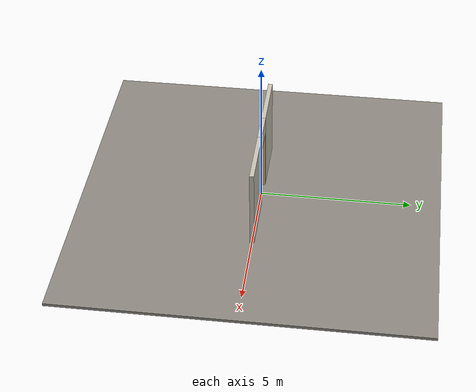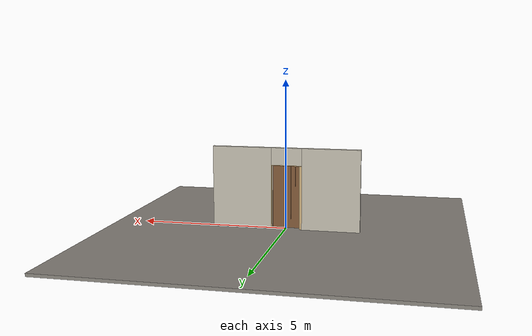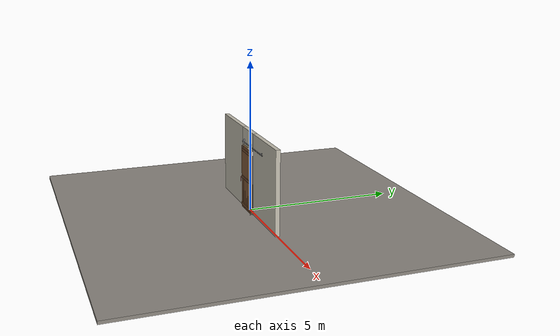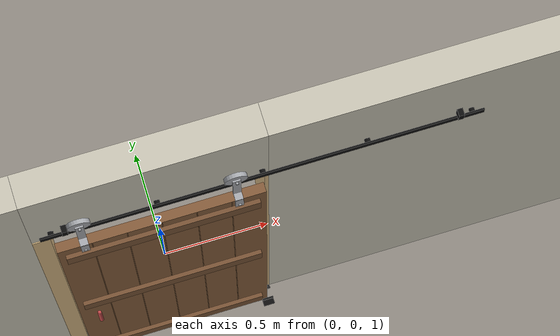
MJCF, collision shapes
<?xml version="1.0" ?>
<mujoco model="db0007_sliding_single_full">
  <compiler angle="radian" meshdir="../../hardware" texturedir="../../textures" autolimits="true" inertiafromgeom="false"/>
  <option timestep="0.002" integrator="implicitfast" cone="elliptic" impratio="10" noslip_iterations="3">
    <flag multiccd="enable"/>
  </option>
  <size memory="16M"/>
  <default>
    <geom condim="4" solref="0.005 1" solimp="0.95 0.99 0.001"/>
    <joint solreflimit="0.005 1" solimplimit="0.95 0.99 0.001"/>
    <tendon solreflimit="0.005 1"/>
    <equality solref="0.002 1"/>
  </default>
  <visual>
    <headlight ambient="0.4 0.4 0.4" diffuse="0.7 0.7 0.7" specular="0.2 0.2 0.2"/>
    <quality shadowsize="4096"/>
    <map znear="0.01" zfar="60"/>
  </visual>
  <asset>
    <mesh name="pull_1e5d69a91a" file="pull_1e5d69a91a.obj"/>
    <material name="mat_floor" rgba="0.55 0.53 0.5 1" specular="0.2" shininess="0.15" reflectance="0"/>
    <material name="mat_wall" rgba="0.78 0.76 0.7 1" specular="0.2" shininess="0.1" reflectance="0"/>
    <material name="mat_frame" rgba="0.82 0.7 0.5 1" specular="0.2" shininess="0.45" reflectance="0"/>
    <material name="mat_track" rgba="0.05 0.05 0.05 1" specular="0.38" shininess="0.3" reflectance="0.12"/>
    <material name="mat_leaf" rgba="0.517 0.357 0.225 1" specular="0.2" shininess="0.5" reflectance="0"/>
    <material name="mat_leaf_brace" rgba="0.466 0.321 0.203 1" specular="0.2" shininess="0.2" reflectance="0"/>
    <material name="mat_roller" rgba="0.65 0.66 0.68 1" specular="0.74" shininess="0.5" reflectance="0.36"/>
    <material name="mat_op_stainless" rgba="0.75 0.76 0.77 1" specular="0.8" shininess="0.65" reflectance="0.4"/>
    <material name="mat_hook" rgba="0.75 0.76 0.77 1" specular="0.8" shininess="0.65" reflectance="0.4"/>
    <texture name="skybox" type="skybox" builtin="gradient" rgb1="0.6 0.7 0.85" rgb2="0.9 0.92 0.95" width="256" height="256"/>
  </asset>
  <worldbody>
    <light name="sun" pos="1.5 -2.5 4" dir="-0.3 0.5 -0.8" directional="true" diffuse="0.8 0.8 0.8" specular="0.3 0.3 0.3" castshadow="true"/>
    <light name="fill" pos="-1.5 2.5 3" dir="0.3 -0.5 -0.7" directional="true" diffuse="0.35 0.35 0.4" castshadow="false"/>
    <camera name="robot_view" pos="0 -2.644375 1.817425" xyaxes="1 0 0 0 0.26963 0.962964" fovy="52"/>
    <camera name="far_view" pos="0 2.644375 1.817425" xyaxes="-1 0 0 0 -0.26963 0.962964" fovy="52"/>
    <camera name="iso" pos="2.009725 -2.221275 2.240525" xyaxes="0.741536 0.670913 0 -0.242917 0.268487 0.932151" fovy="46"/>
    <camera name="detail_handle" pos="-0.187 -0.9965 1.28" xyaxes="0.97561 0.219512 0 -0.070934 0.315262 0.94635" fovy="38"/>
    <geom name="floor" type="box" size="6 6 0.05" pos="0 0 -0.05" material="mat_floor" group="0" contype="1" conaffinity="1" friction="0.8 0.005 0.0001" density="2400"/>
    <geom name="wall_left" type="box" size="0.977 0.0725 1.377" pos="-1.523 0 1.377" material="mat_wall" group="0" contype="1" conaffinity="1" friction="0.6 0.005 0.0001" density="800"/>
    <geom name="wall_right" type="box" size="1.007 0.0725 1.377" pos="1.493 0 1.377" material="mat_wall" group="0" contype="1" conaffinity="1" friction="0.6 0.005 0.0001" density="800"/>
    <geom name="wall_header" type="box" size="0.516 0.0725 0.2905" pos="-0.03 0 2.4635" material="mat_wall" group="0" contype="1" conaffinity="1" friction="0.6 0.005 0.0001" density="800"/>
    <geom name="jamb_r" type="box" size="0.0095 0.0725 1.077" pos="0.4765 0 1.077" material="mat_frame" group="0" contype="1" conaffinity="1" friction="0.6 0.005 0.0001" density="300"/>
    <geom name="jamb_head" type="box" size="0.486 0.0725 0.0095" pos="0 0 2.1635" material="mat_frame" group="0" contype="1" conaffinity="1" friction="0.6 0.005 0.0001" density="300"/>
    <geom name="flat_track" type="box" size="0.964 0.004 0.02" pos="0.457 -0.0945 2.274" material="mat_track" group="0" contype="1" conaffinity="1" friction="0.6 0.005 0.0001" density="7850"/>
    <geom name="track_standoff_0" type="cylinder" size="0.012 0.009" pos="-0.457 -0.0815 2.274" quat="0.707107 -0.707107 0 0" material="mat_track" group="1" contype="0" conaffinity="0" density="7850"/>
    <geom name="track_standoff_1" type="cylinder" size="0.012 0.009" pos="0 -0.0815 2.274" quat="0.707107 -0.707107 0 0" material="mat_track" group="1" contype="0" conaffinity="0" density="7850"/>
    <geom name="track_standoff_2" type="cylinder" size="0.012 0.009" pos="0.457 -0.0815 2.274" quat="0.707107 -0.707107 0 0" material="mat_track" group="1" contype="0" conaffinity="0" density="7850"/>
    <geom name="track_standoff_3" type="cylinder" size="0.012 0.009" pos="0.914 -0.0815 2.274" quat="0.707107 -0.707107 0 0" material="mat_track" group="1" contype="0" conaffinity="0" density="7850"/>
    <geom name="track_standoff_4" type="cylinder" size="0.012 0.009" pos="1.371 -0.0815 2.274" quat="0.707107 -0.707107 0 0" material="mat_track" group="1" contype="0" conaffinity="0" density="7850"/>
    <geom name="leaf_track_stop_l" type="box" size="0.012 0.016 0.027" pos="-0.399 -0.0945 2.319" material="mat_track" group="0" contype="1" conaffinity="1" friction="0.6 0.005 0.0001" density="7850"/>
    <geom name="leaf_track_stop_r" type="box" size="0.012 0.016 0.027" pos="1.313 -0.0945 2.319" material="mat_track" group="0" contype="1" conaffinity="1" friction="0.6 0.005 0.0001" density="7850"/>
    <geom name="jamb_latch_0" type="box" size="0.0395 0.0725 1.077" pos="-0.5065 0 1.077" material="mat_frame" group="0" contype="1" conaffinity="1" friction="0.6 0.005 0.0001" density="300"/>
    <geom name="floor_guide_n" type="box" size="0.028 0.004 0.009" pos="0.457 -0.1415 0.009" material="mat_track" group="0" contype="1" conaffinity="1" friction="0.6 0.005 0.0001" density="7850"/>
    <geom name="floor_guide_n_foot" type="box" size="0.028 0.018 0.002" pos="0.457 -0.1555 0.002" material="mat_track" group="0" contype="1" conaffinity="1" friction="0.6 0.005 0.0001" density="7850"/>
    <geom name="floor_guide_p" type="box" size="0.028 0.004 0.009" pos="0.457 -0.0875 0.009" material="mat_track" group="0" contype="1" conaffinity="1" friction="0.6 0.005 0.0001" density="7850"/>
    <geom name="floor_guide_p_foot" type="box" size="0.028 0.018 0.002" pos="0.457 -0.0735 0.002" material="mat_track" group="0" contype="1" conaffinity="1" friction="0.6 0.005 0.0001" density="7850"/>
    <site name="approach_point" pos="0 -1.5 0" quat="1 0 0 0" size="0.05" rgba="0.2 0.9 0.2 0.5" group="4"/>
    <site name="goal_point" pos="0 1.5 0" quat="1 0 0 0" size="0.05" rgba="0.2 0.9 0.2 0.5" group="4"/>
    <site name="door_plane_center" pos="0 0 1.077" quat="1 0 0 0" size="0.02" rgba="0.2 0.9 0.2 0.5" group="4"/>
    <body name="leaf" pos="0 -0.1145 0">
      <inertial pos="-0.002547 0.00004 1.157321" mass="60.574661" quat="0.500091 0.500453 -0.498647 0.500806" diaginertia="4.433124534 26.744356987 31.15174669"/>
      <joint name="leaf_slide" type="slide" axis="1 0 0" limited="true" range="0 0.914" damping="5.028733" frictionloss="15.444897" armature="0.5"/>
      <geom name="leaf_slab" type="box" size="0.457 0.022 1.067" pos="0 0 1.079" material="mat_leaf" group="0" contype="1" conaffinity="1" friction="0.4 0.005 0.0001" density="1"/>
      <geom name="leaf_plank_gap_1" type="box" size="0.002 0.023 1.057" pos="-0.304667 0 1.079" material="mat_leaf_brace" group="1" contype="0" conaffinity="0" density="1"/>
      <geom name="leaf_plank_gap_2" type="box" size="0.002 0.023 1.057" pos="-0.152333 0 1.079" material="mat_leaf_brace" group="1" contype="0" conaffinity="0" density="1"/>
      <geom name="leaf_plank_gap_3" type="box" size="0.002 0.023 1.057" pos="0 0 1.079" material="mat_leaf_brace" group="1" contype="0" conaffinity="0" density="1"/>
      <geom name="leaf_plank_gap_4" type="box" size="0.002 0.023 1.057" pos="0.152333 0 1.079" material="mat_leaf_brace" group="1" contype="0" conaffinity="0" density="1"/>
      <geom name="leaf_plank_gap_5" type="box" size="0.002 0.023 1.057" pos="0.304667 0 1.079" material="mat_leaf_brace" group="1" contype="0" conaffinity="0" density="1"/>
      <geom name="leaf_batten_13" type="box" size="0.427 0.01 0.045" pos="0 -0.032 0.132" material="mat_leaf_brace" group="1" contype="0" conaffinity="0" density="1"/>
      <geom name="leaf_batten_202" type="box" size="0.427 0.01 0.045" pos="0 -0.032 2.026" material="mat_leaf_brace" group="1" contype="0" conaffinity="0" density="1"/>
      <geom name="leaf_batten_107" type="box" size="0.427 0.01 0.045" pos="0 -0.032 1.079" material="mat_leaf_brace" group="1" contype="0" conaffinity="0" density="1"/>
      <geom name="leaf_hanger_wheel_0" type="cylinder" size="0.05 0.01" pos="-0.337 0.02 2.344" quat="0.707107 -0.707107 0 0" material="mat_roller" group="1" contype="0" conaffinity="0" density="7850"/>
      <geom name="leaf_hanger_mount_0" type="box" size="0.018 0.004 0.0725" pos="-0.337 -0.026 2.0985" material="mat_roller" group="1" contype="0" conaffinity="0" density="7850"/>
      <geom name="leaf_hanger_strap_0" type="box" size="0.018 0.004 0.0925" pos="-0.337 0.006 2.2635" material="mat_roller" group="1" contype="0" conaffinity="0" density="7850"/>
      <geom name="leaf_hanger_bend_0" type="box" size="0.018 0.02 0.004" pos="-0.337 -0.01 2.171" material="mat_roller" group="1" contype="0" conaffinity="0" density="7850"/>
      <geom name="leaf_hanger_axle_0" type="cylinder" size="0.006 0.021" pos="-0.337 0.013 2.344" quat="0.707107 -0.707107 0 0" material="mat_roller" group="1" contype="0" conaffinity="0" density="7850"/>
      <geom name="leaf_hanger_bolt_0_90" type="cylinder" size="0.007 0.004" pos="-0.337 -0.032 2.056" quat="0.707107 -0.707107 0 0" material="mat_roller" group="1" contype="0" conaffinity="0" density="7850"/>
      <geom name="leaf_hanger_bolt_0_45" type="cylinder" size="0.007 0.004" pos="-0.337 -0.032 2.101" quat="0.707107 -0.707107 0 0" material="mat_roller" group="1" contype="0" conaffinity="0" density="7850"/>
      <geom name="leaf_hanger_wheel_1" type="cylinder" size="0.05 0.01" pos="0.337 0.02 2.344" quat="0.707107 -0.707107 0 0" material="mat_roller" group="1" contype="0" conaffinity="0" density="7850"/>
      <geom name="leaf_hanger_mount_1" type="box" size="0.018 0.004 0.0725" pos="0.337 -0.026 2.0985" material="mat_roller" group="1" contype="0" conaffinity="0" density="7850"/>
      <geom name="leaf_hanger_strap_1" type="box" size="0.018 0.004 0.0925" pos="0.337 0.006 2.2635" material="mat_roller" group="1" contype="0" conaffinity="0" density="7850"/>
      <geom name="leaf_hanger_bend_1" type="box" size="0.018 0.02 0.004" pos="0.337 -0.01 2.171" material="mat_roller" group="1" contype="0" conaffinity="0" density="7850"/>
      <geom name="leaf_hanger_axle_1" type="cylinder" size="0.006 0.021" pos="0.337 0.013 2.344" quat="0.707107 -0.707107 0 0" material="mat_roller" group="1" contype="0" conaffinity="0" density="7850"/>
      <geom name="leaf_hanger_bolt_1_90" type="cylinder" size="0.007 0.004" pos="0.337 -0.032 2.056" quat="0.707107 -0.707107 0 0" material="mat_roller" group="1" contype="0" conaffinity="0" density="7850"/>
      <geom name="leaf_hanger_bolt_1_45" type="cylinder" size="0.007 0.004" pos="0.337 -0.032 2.101" quat="0.707107 -0.707107 0 0" material="mat_roller" group="1" contype="0" conaffinity="0" density="7850"/>
      <geom name="leaf_pull_n" type="mesh" mesh="pull_1e5d69a91a" pos="-0.367 -0.022 1" quat="0 0 -0.707107 0.707107" material="mat_op_stainless" group="1" contype="0" conaffinity="0" density="3000"/>
      <geom name="leaf_pull_col_n" type="capsule" size="0.0095 0.08" pos="-0.367 -0.082 1" material="mat_op_stainless" group="3" contype="1" conaffinity="1" rgba="0.8 0.3 0.3 0.25" friction="0.7 0.01 0.0001" density="3000"/>
      <site name="leaf_pull_grip_n" pos="-0.367 -0.082 1" quat="1 0 0 0" size="0.012" rgba="0.2 0.9 0.2 0.5" group="4"/>
      <site name="leaf_edge_mid" pos="-0.457 0 1.079" quat="1 0 0 0" size="0.02" rgba="0.2 0.9 0.2 0.5" group="4"/>
    </body>
  </worldbody>
  <sensor>
    <jointpos name="leaf_slide_pos" joint="leaf_slide"/>
    <jointvel name="leaf_slide_vel" joint="leaf_slide"/>
  </sensor>
</mujoco>
